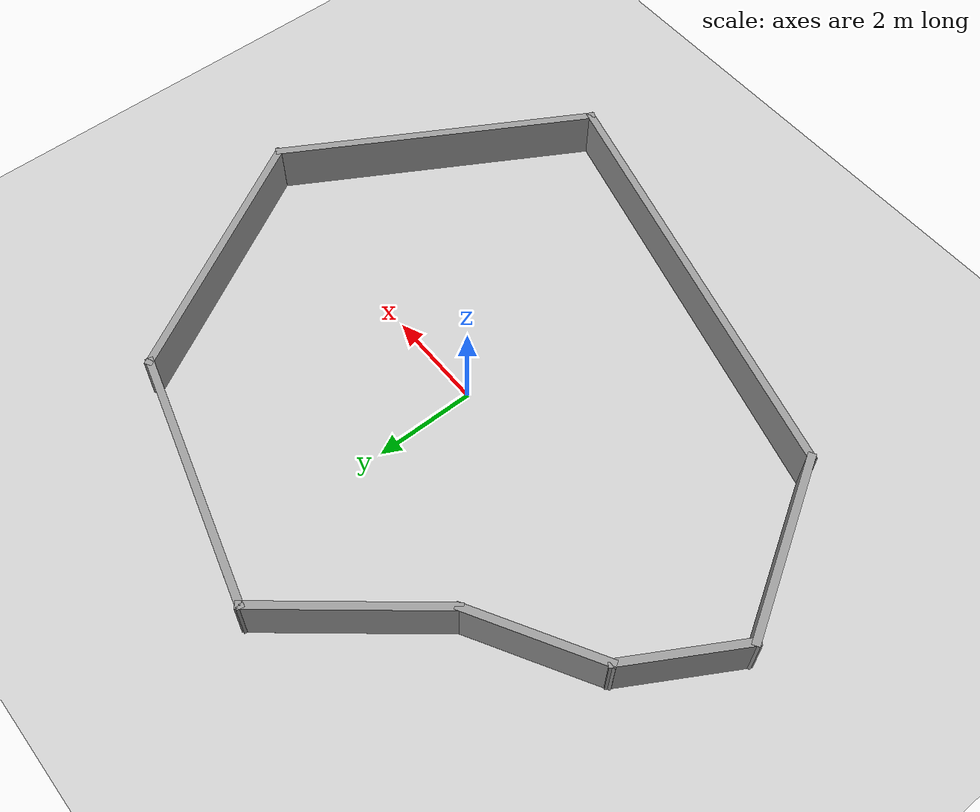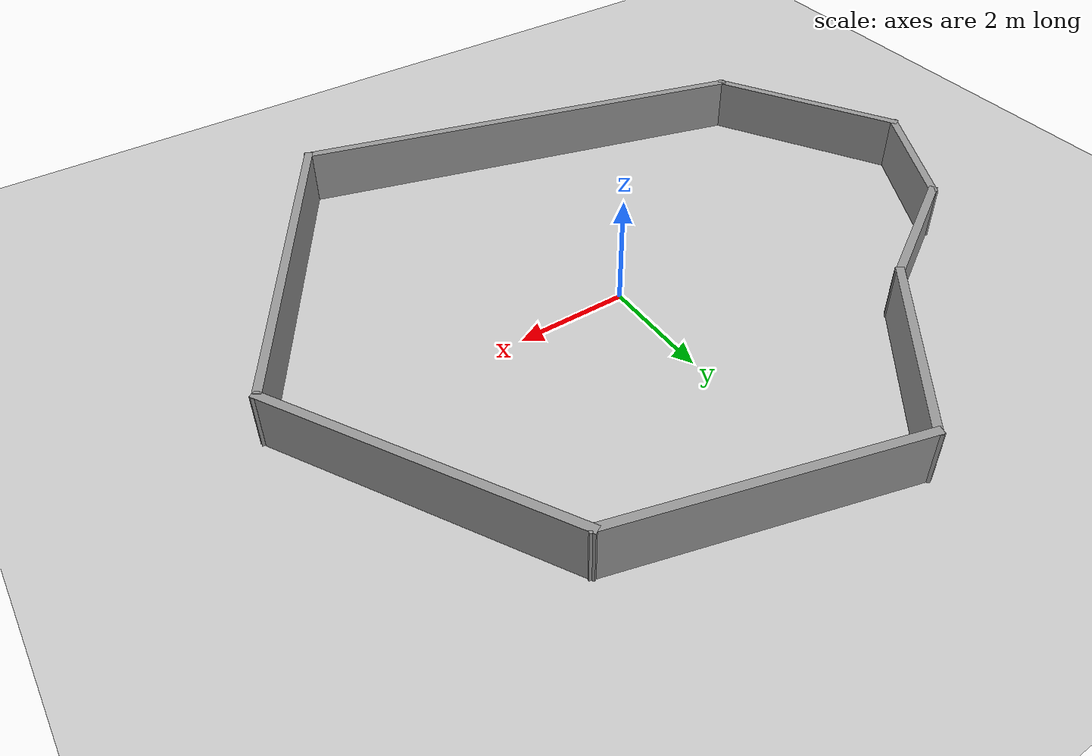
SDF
<sdf version="1.5">
 <world name="default">
  <include><uri>model://sun</uri></include>
  <include><uri>model://ground_plane</uri></include>
  <model name="walls">
   <pose>-0.3 0 -0.75 0 -0 0</pose>
   <link name="Wall_0">
    <collision name="Wall_0_Collision">
     <geometry><box><size>2.75 0.15 1</size></box></geometry>
     <pose>0 0 1.25 0 -0 0</pose>
    </collision>
    <visual name="Wall_0_Visual">
     <pose>0 0 1.25 0 -0 0</pose>
     <geometry><box><size>2.75 0.15 1</size></box></geometry>
     <material>
      <script><uri>file://media/materials/scripts/gazebo.material</uri><name>Gazebo/Grey</name></script>
      <ambient>1 1 1 1</ambient>
     </material>
     <meta><layer>0</layer></meta>
    </visual>
    <pose>-4.34015 2.30093 0 0 -0 -2.61799</pose>
   </link>
   <link name="Wall_1">
    <collision name="Wall_1_Collision">
     <geometry><box><size>2.5 0.15 1</size></box></geometry>
     <pose>0 0 1.25 0 -0 0</pose>
    </collision>
    <visual name="Wall_1_Visual">
     <pose>0 0 1.25 0 -0 0</pose>
     <geometry><box><size>2.5 0.15 1</size></box></geometry>
     <material>
      <script><uri>file://media/materials/scripts/gazebo.material</uri><name>Gazebo/Grey</name></script>
      <ambient>1 1 1 1</ambient>
     </material>
     <meta><layer>0</layer></meta>
    </visual>
    <pose>-6.05348 0.633352 0 0 -0 -2.0944</pose>
   </link>
   <link name="Wall_2">
    <collision name="Wall_2_Collision">
     <geometry><box><size>3.75 0.15 1</size></box></geometry>
     <pose>0 0 1.25 0 -0 0</pose>
    </collision>
    <visual name="Wall_2_Visual">
     <pose>0 0 1.25 0 -0 0</pose>
     <geometry><box><size>3.75 0.15 1</size></box></geometry>
     <material>
      <script><uri>file://media/materials/scripts/gazebo.material</uri><name>Gazebo/Grey</name></script>
      <ambient>1 1 1 1</ambient>
     </material>
     <meta><layer>0</layer></meta>
    </visual>
    <pose>-5.74098 -1.94307 0 0 -0 -1.0472</pose>
   </link>
   <link name="Wall_3">
    <collision name="Wall_3_Collision">
     <geometry><box><size>8.75 0.15 1</size></box></geometry>
     <pose>0 0 1.25 0 -0 0</pose>
    </collision>
    <visual name="Wall_3_Visual">
     <pose>0 0 1.25 0 -0 0</pose>
     <geometry><box><size>8.75 0.15 1</size></box></geometry>
     <material>
      <script><uri>file://media/materials/scripts/gazebo.material</uri><name>Gazebo/Grey</name></script>
      <ambient>1 1 1 1</ambient>
     </material>
     <meta><layer>0</layer></meta>
    </visual>
    <pose>-0.6875 -4.61484 0 0 -0 -0.261799</pose>
   </link>
   <link name="Wall_4">
    <collision name="Wall_4_Collision">
     <geometry><box><size>6.5 0.15 1</size></box></geometry>
     <pose>0 0 1.25 0 -0 0</pose>
    </collision>
    <visual name="Wall_4_Visual">
     <pose>0 0 1.25 0 -0 0</pose>
     <geometry><box><size>6.5 0.15 1</size></box></geometry>
     <material>
      <script><uri>file://media/materials/scripts/gazebo.material</uri><name>Gazebo/Grey</name></script>
      <ambient>1 1 1 1</ambient>
     </material>
     <meta><layer>0</layer></meta>
    </visual>
    <pose>5.05348 -2.97813 0 0 -0 1.0472</pose>
   </link>
   <link name="Wall_5">
    <collision name="Wall_5_Collision">
     <geometry><box><size>5.5 0.15 1</size></box></geometry>
     <pose>0 0 1.25 0 -0 0</pose>
    </collision>
    <visual name="Wall_5_Visual">
     <pose>0 0 1.25 0 -0 0</pose>
     <geometry><box><size>5.5 0.15 1</size></box></geometry>
     <material>
      <script><uri>file://media/materials/scripts/gazebo.material</uri><name>Gazebo/Grey</name></script>
      <ambient>1 1 1 1</ambient>
     </material>
     <meta><layer>0</layer></meta>
    </visual>
    <pose>5.30348 2.08812 0 0 -0 2.0944</pose>
   </link>
   <link name="Wall_6">
    <collision name="Wall_6_Collision">
     <geometry><box><size>5.25 0.15 1</size></box></geometry>
     <pose>0 0 1.25 0 -0 0</pose>
    </collision>
    <visual name="Wall_6_Visual">
     <pose>0 0 1.25 0 -0 0</pose>
     <geometry><box><size>5.25 0.15 1</size></box></geometry>
     <material>
      <script><uri>file://media/materials/scripts/gazebo.material</uri><name>Gazebo/Grey</name></script>
      <ambient>1 1 1 1</ambient>
     </material>
     <meta><layer>0</layer></meta>
    </visual>
    <pose>1.50287 5.06472 0 0 -0 2.87979</pose>
   </link>
   <link name="Wall_7">
    <collision name="Wall_7_Collision">
     <geometry><box><size>3.72417 0.15 1</size></box></geometry>
     <pose>0 0 1.25 0 -0 0</pose>
    </collision>
    <visual name="Wall_7_Visual">
     <pose>0 0 1.25 0 -0 0</pose>
     <geometry><box><size>3.72417 0.15 1</size></box></geometry>
     <material>
      <script><uri>file://media/materials/scripts/gazebo.material</uri><name>Gazebo/Grey</name></script>
      <ambient>1 1 1 1</ambient>
     </material>
     <meta><layer>0</layer></meta>
    </visual>
    <pose>-2.08728 4.33782 0 0 -0 -2.25319</pose>
   </link>
   <static>1</static>
  </model>
  <physics type="ode">
   <max_step_size>0.01</max_step_size>
   <real_time_factor>1</real_time_factor>
   <real_time_update_rate>100</real_time_update_rate>
   <gravity>0 0 -9.8</gravity>
  </physics>
 </world>
</sdf>
